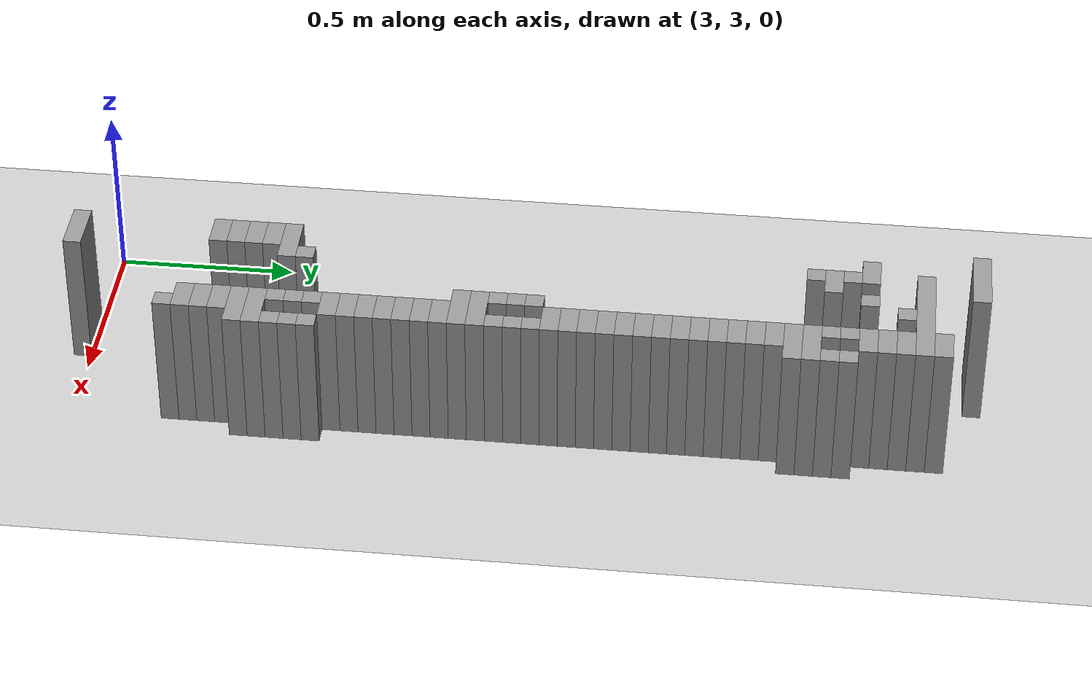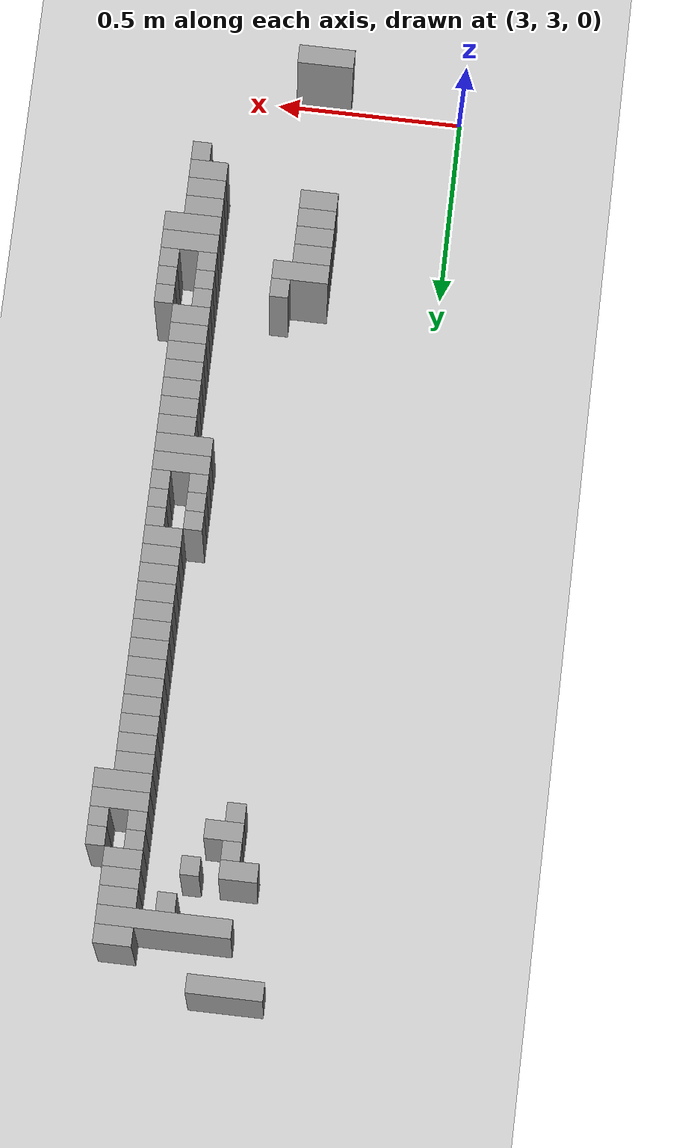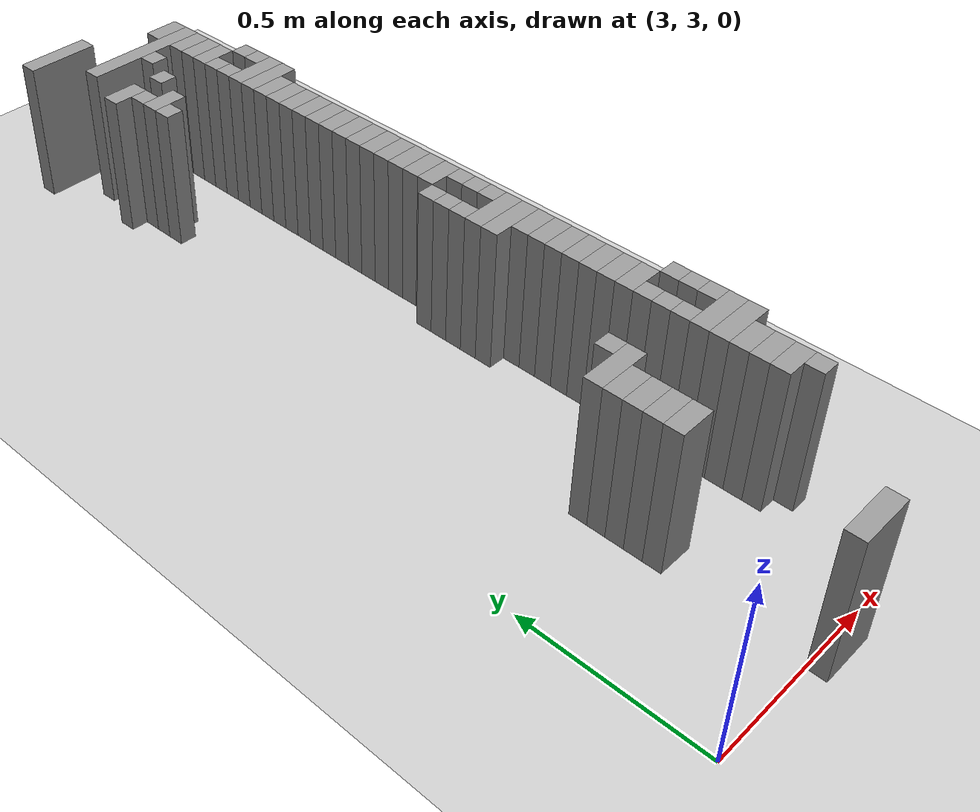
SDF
<sdf version="1.6">
 <world name="parking_mission">
  <include><uri>model://sun</uri></include>
  <include><uri>model://ground_plane</uri></include>
  <model name="wall_8">
   <static>true</static>
   <pose>3.3500 5.4750 0.2000 0 0 0</pose>
   <link name="link">
    <collision name="collision">
     <geometry><box><size>0.2000 0.0500 0.4000</size></box></geometry>
     <surface>
      <contact><ode><kp>20000.0</kp><kd>10.0</kd><max_vel>0.5</max_vel><min_depth>0.001</min_depth></ode></contact>
      <friction><ode><mu>1.0</mu><mu2>1.0</mu2></ode></friction>
     </surface>
    </collision>
    <visual name="visual">
     <geometry><box><size>0.2000 0.0500 0.4000</size></box></geometry>
     <material>
      <script><name>Gazebo/Grey</name><uri>file://media/materials/scripts/gazebo.material</uri></script>
     </material>
    </visual>
   </link>
  </model>
  <model name="wall_13">
   <static>true</static>
   <pose>3.6500 5.3750 0.2000 0 0 0</pose>
   <link name="link">
    <collision name="collision">
     <geometry><box><size>0.1000 0.0500 0.4000</size></box></geometry>
     <surface>
      <contact><ode><kp>20000.0</kp><kd>10.0</kd><max_vel>0.5</max_vel><min_depth>0.001</min_depth></ode></contact>
      <friction><ode><mu>1.0</mu><mu2>1.0</mu2></ode></friction>
     </surface>
    </collision>
    <visual name="visual">
     <geometry><box><size>0.1000 0.0500 0.4000</size></box></geometry>
     <material>
      <script><name>Gazebo/Grey</name><uri>file://media/materials/scripts/gazebo.material</uri></script>
     </material>
    </visual>
   </link>
  </model>
  <model name="wall_16">
   <static>true</static>
   <pose>3.5250 5.3250 0.2000 0 0 0</pose>
   <link name="link">
    <collision name="collision">
     <geometry><box><size>0.3500 0.0500 0.4000</size></box></geometry>
     <surface>
      <contact><ode><kp>20000.0</kp><kd>10.0</kd><max_vel>0.5</max_vel><min_depth>0.001</min_depth></ode></contact>
      <friction><ode><mu>1.0</mu><mu2>1.0</mu2></ode></friction>
     </surface>
    </collision>
    <visual name="visual">
     <geometry><box><size>0.3500 0.0500 0.4000</size></box></geometry>
     <material>
      <script><name>Gazebo/Grey</name><uri>file://media/materials/scripts/gazebo.material</uri></script>
     </material>
    </visual>
   </link>
  </model>
  <model name="wall_19">
   <static>true</static>
   <pose>3.5250 5.2750 0.2000 0 0 0</pose>
   <link name="link">
    <collision name="collision">
     <geometry><box><size>0.0500 0.0500 0.4000</size></box></geometry>
     <surface>
      <contact><ode><kp>20000.0</kp><kd>10.0</kd><max_vel>0.5</max_vel><min_depth>0.001</min_depth></ode></contact>
      <friction><ode><mu>1.0</mu><mu2>1.0</mu2></ode></friction>
     </surface>
    </collision>
    <visual name="visual">
     <geometry><box><size>0.0500 0.0500 0.4000</size></box></geometry>
     <material>
      <script><name>Gazebo/Grey</name><uri>file://media/materials/scripts/gazebo.material</uri></script>
     </material>
    </visual>
   </link>
  </model>
  <model name="wall_20">
   <static>true</static>
   <pose>3.6500 5.2750 0.2000 0 0 0</pose>
   <link name="link">
    <collision name="collision">
     <geometry><box><size>0.1000 0.0500 0.4000</size></box></geometry>
     <surface>
      <contact><ode><kp>20000.0</kp><kd>10.0</kd><max_vel>0.5</max_vel><min_depth>0.001</min_depth></ode></contact>
      <friction><ode><mu>1.0</mu><mu2>1.0</mu2></ode></friction>
     </surface>
    </collision>
    <visual name="visual">
     <geometry><box><size>0.1000 0.0500 0.4000</size></box></geometry>
     <material>
      <script><name>Gazebo/Grey</name><uri>file://media/materials/scripts/gazebo.material</uri></script>
     </material>
    </visual>
   </link>
  </model>
  <model name="wall_22">
   <static>true</static>
   <pose>3.6500 5.2250 0.2000 0 0 0</pose>
   <link name="link">
    <collision name="collision">
     <geometry><box><size>0.1000 0.0500 0.4000</size></box></geometry>
     <surface>
      <contact><ode><kp>20000.0</kp><kd>10.0</kd><max_vel>0.5</max_vel><min_depth>0.001</min_depth></ode></contact>
      <friction><ode><mu>1.0</mu><mu2>1.0</mu2></ode></friction>
     </surface>
    </collision>
    <visual name="visual">
     <geometry><box><size>0.1000 0.0500 0.4000</size></box></geometry>
     <material>
      <script><name>Gazebo/Grey</name><uri>file://media/materials/scripts/gazebo.material</uri></script>
     </material>
    </visual>
   </link>
  </model>
  <model name="wall_24">
   <static>true</static>
   <pose>3.3500 5.1750 0.2000 0 0 0</pose>
   <link name="link">
    <collision name="collision">
     <geometry><box><size>0.1000 0.0500 0.4000</size></box></geometry>
     <surface>
      <contact><ode><kp>20000.0</kp><kd>10.0</kd><max_vel>0.5</max_vel><min_depth>0.001</min_depth></ode></contact>
      <friction><ode><mu>1.0</mu><mu2>1.0</mu2></ode></friction>
     </surface>
    </collision>
    <visual name="visual">
     <geometry><box><size>0.1000 0.0500 0.4000</size></box></geometry>
     <material>
      <script><name>Gazebo/Grey</name><uri>file://media/materials/scripts/gazebo.material</uri></script>
     </material>
    </visual>
   </link>
  </model>
  <model name="wall_25">
   <static>true</static>
   <pose>3.4750 5.1750 0.2000 0 0 0</pose>
   <link name="link">
    <collision name="collision">
     <geometry><box><size>0.0500 0.0500 0.4000</size></box></geometry>
     <surface>
      <contact><ode><kp>20000.0</kp><kd>10.0</kd><max_vel>0.5</max_vel><min_depth>0.001</min_depth></ode></contact>
      <friction><ode><mu>1.0</mu><mu2>1.0</mu2></ode></friction>
     </surface>
    </collision>
    <visual name="visual">
     <geometry><box><size>0.0500 0.0500 0.4000</size></box></geometry>
     <material>
      <script><name>Gazebo/Grey</name><uri>file://media/materials/scripts/gazebo.material</uri></script>
     </material>
    </visual>
   </link>
  </model>
  <model name="wall_26">
   <static>true</static>
   <pose>3.6500 5.1750 0.2000 0 0 0</pose>
   <link name="link">
    <collision name="collision">
     <geometry><box><size>0.1000 0.0500 0.4000</size></box></geometry>
     <surface>
      <contact><ode><kp>20000.0</kp><kd>10.0</kd><max_vel>0.5</max_vel><min_depth>0.001</min_depth></ode></contact>
      <friction><ode><mu>1.0</mu><mu2>1.0</mu2></ode></friction>
     </surface>
    </collision>
    <visual name="visual">
     <geometry><box><size>0.1000 0.0500 0.4000</size></box></geometry>
     <material>
      <script><name>Gazebo/Grey</name><uri>file://media/materials/scripts/gazebo.material</uri></script>
     </material>
    </visual>
   </link>
  </model>
  <model name="wall_29">
   <static>true</static>
   <pose>3.3750 5.1250 0.2000 0 0 0</pose>
   <link name="link">
    <collision name="collision">
     <geometry><box><size>0.0500 0.0500 0.4000</size></box></geometry>
     <surface>
      <contact><ode><kp>20000.0</kp><kd>10.0</kd><max_vel>0.5</max_vel><min_depth>0.001</min_depth></ode></contact>
      <friction><ode><mu>1.0</mu><mu2>1.0</mu2></ode></friction>
     </surface>
    </collision>
    <visual name="visual">
     <geometry><box><size>0.0500 0.0500 0.4000</size></box></geometry>
     <material>
      <script><name>Gazebo/Grey</name><uri>file://media/materials/scripts/gazebo.material</uri></script>
     </material>
    </visual>
   </link>
  </model>
  <model name="wall_30">
   <static>true</static>
   <pose>3.6250 5.1250 0.2000 0 0 0</pose>
   <link name="link">
    <collision name="collision">
     <geometry><box><size>0.0500 0.0500 0.4000</size></box></geometry>
     <surface>
      <contact><ode><kp>20000.0</kp><kd>10.0</kd><max_vel>0.5</max_vel><min_depth>0.001</min_depth></ode></contact>
      <friction><ode><mu>1.0</mu><mu2>1.0</mu2></ode></friction>
     </surface>
    </collision>
    <visual name="visual">
     <geometry><box><size>0.0500 0.0500 0.4000</size></box></geometry>
     <material>
      <script><name>Gazebo/Grey</name><uri>file://media/materials/scripts/gazebo.material</uri></script>
     </material>
    </visual>
   </link>
  </model>
  <model name="wall_31">
   <static>true</static>
   <pose>3.7250 5.1250 0.2000 0 0 0</pose>
   <link name="link">
    <collision name="collision">
     <geometry><box><size>0.0500 0.0500 0.4000</size></box></geometry>
     <surface>
      <contact><ode><kp>20000.0</kp><kd>10.0</kd><max_vel>0.5</max_vel><min_depth>0.001</min_depth></ode></contact>
      <friction><ode><mu>1.0</mu><mu2>1.0</mu2></ode></friction>
     </surface>
    </collision>
    <visual name="visual">
     <geometry><box><size>0.0500 0.0500 0.4000</size></box></geometry>
     <material>
      <script><name>Gazebo/Grey</name><uri>file://media/materials/scripts/gazebo.material</uri></script>
     </material>
    </visual>
   </link>
  </model>
  <model name="wall_33">
   <static>true</static>
   <pose>3.4000 5.0750 0.2000 0 0 0</pose>
   <link name="link">
    <collision name="collision">
     <geometry><box><size>0.1000 0.0500 0.4000</size></box></geometry>
     <surface>
      <contact><ode><kp>20000.0</kp><kd>10.0</kd><max_vel>0.5</max_vel><min_depth>0.001</min_depth></ode></contact>
      <friction><ode><mu>1.0</mu><mu2>1.0</mu2></ode></friction>
     </surface>
    </collision>
    <visual name="visual">
     <geometry><box><size>0.1000 0.0500 0.4000</size></box></geometry>
     <material>
      <script><name>Gazebo/Grey</name><uri>file://media/materials/scripts/gazebo.material</uri></script>
     </material>
    </visual>
   </link>
  </model>
  <model name="wall_34">
   <static>true</static>
   <pose>3.6250 5.0750 0.2000 0 0 0</pose>
   <link name="link">
    <collision name="collision">
     <geometry><box><size>0.0500 0.0500 0.4000</size></box></geometry>
     <surface>
      <contact><ode><kp>20000.0</kp><kd>10.0</kd><max_vel>0.5</max_vel><min_depth>0.001</min_depth></ode></contact>
      <friction><ode><mu>1.0</mu><mu2>1.0</mu2></ode></friction>
     </surface>
    </collision>
    <visual name="visual">
     <geometry><box><size>0.0500 0.0500 0.4000</size></box></geometry>
     <material>
      <script><name>Gazebo/Grey</name><uri>file://media/materials/scripts/gazebo.material</uri></script>
     </material>
    </visual>
   </link>
  </model>
  <model name="wall_35">
   <static>true</static>
   <pose>3.7250 5.0750 0.2000 0 0 0</pose>
   <link name="link">
    <collision name="collision">
     <geometry><box><size>0.0500 0.0500 0.4000</size></box></geometry>
     <surface>
      <contact><ode><kp>20000.0</kp><kd>10.0</kd><max_vel>0.5</max_vel><min_depth>0.001</min_depth></ode></contact>
      <friction><ode><mu>1.0</mu><mu2>1.0</mu2></ode></friction>
     </surface>
    </collision>
    <visual name="visual">
     <geometry><box><size>0.0500 0.0500 0.4000</size></box></geometry>
     <material>
      <script><name>Gazebo/Grey</name><uri>file://media/materials/scripts/gazebo.material</uri></script>
     </material>
    </visual>
   </link>
  </model>
  <model name="wall_37">
   <static>true</static>
   <pose>3.3750 5.0250 0.2000 0 0 0</pose>
   <link name="link">
    <collision name="collision">
     <geometry><box><size>0.0500 0.0500 0.4000</size></box></geometry>
     <surface>
      <contact><ode><kp>20000.0</kp><kd>10.0</kd><max_vel>0.5</max_vel><min_depth>0.001</min_depth></ode></contact>
      <friction><ode><mu>1.0</mu><mu2>1.0</mu2></ode></friction>
     </surface>
    </collision>
    <visual name="visual">
     <geometry><box><size>0.0500 0.0500 0.4000</size></box></geometry>
     <material>
      <script><name>Gazebo/Grey</name><uri>file://media/materials/scripts/gazebo.material</uri></script>
     </material>
    </visual>
   </link>
  </model>
  <model name="wall_38">
   <static>true</static>
   <pose>3.6750 5.0250 0.2000 0 0 0</pose>
   <link name="link">
    <collision name="collision">
     <geometry><box><size>0.1500 0.0500 0.4000</size></box></geometry>
     <surface>
      <contact><ode><kp>20000.0</kp><kd>10.0</kd><max_vel>0.5</max_vel><min_depth>0.001</min_depth></ode></contact>
      <friction><ode><mu>1.0</mu><mu2>1.0</mu2></ode></friction>
     </surface>
    </collision>
    <visual name="visual">
     <geometry><box><size>0.1500 0.0500 0.4000</size></box></geometry>
     <material>
      <script><name>Gazebo/Grey</name><uri>file://media/materials/scripts/gazebo.material</uri></script>
     </material>
    </visual>
   </link>
  </model>
  <model name="wall_40">
   <static>true</static>
   <pose>3.6750 4.9750 0.2000 0 0 0</pose>
   <link name="link">
    <collision name="collision">
     <geometry><box><size>0.1500 0.0500 0.4000</size></box></geometry>
     <surface>
      <contact><ode><kp>20000.0</kp><kd>10.0</kd><max_vel>0.5</max_vel><min_depth>0.001</min_depth></ode></contact>
      <friction><ode><mu>1.0</mu><mu2>1.0</mu2></ode></friction>
     </surface>
    </collision>
    <visual name="visual">
     <geometry><box><size>0.1500 0.0500 0.4000</size></box></geometry>
     <material>
      <script><name>Gazebo/Grey</name><uri>file://media/materials/scripts/gazebo.material</uri></script>
     </material>
    </visual>
   </link>
  </model>
  <model name="wall_42">
   <static>true</static>
   <pose>3.6500 4.9250 0.2000 0 0 0</pose>
   <link name="link">
    <collision name="collision">
     <geometry><box><size>0.1000 0.0500 0.4000</size></box></geometry>
     <surface>
      <contact><ode><kp>20000.0</kp><kd>10.0</kd><max_vel>0.5</max_vel><min_depth>0.001</min_depth></ode></contact>
      <friction><ode><mu>1.0</mu><mu2>1.0</mu2></ode></friction>
     </surface>
    </collision>
    <visual name="visual">
     <geometry><box><size>0.1000 0.0500 0.4000</size></box></geometry>
     <material>
      <script><name>Gazebo/Grey</name><uri>file://media/materials/scripts/gazebo.material</uri></script>
     </material>
    </visual>
   </link>
  </model>
  <model name="wall_44">
   <static>true</static>
   <pose>3.6500 4.8750 0.2000 0 0 0</pose>
   <link name="link">
    <collision name="collision">
     <geometry><box><size>0.1000 0.0500 0.4000</size></box></geometry>
     <surface>
      <contact><ode><kp>20000.0</kp><kd>10.0</kd><max_vel>0.5</max_vel><min_depth>0.001</min_depth></ode></contact>
      <friction><ode><mu>1.0</mu><mu2>1.0</mu2></ode></friction>
     </surface>
    </collision>
    <visual name="visual">
     <geometry><box><size>0.1000 0.0500 0.4000</size></box></geometry>
     <material>
      <script><name>Gazebo/Grey</name><uri>file://media/materials/scripts/gazebo.material</uri></script>
     </material>
    </visual>
   </link>
  </model>
  <model name="wall_46">
   <static>true</static>
   <pose>3.6500 4.8250 0.2000 0 0 0</pose>
   <link name="link">
    <collision name="collision">
     <geometry><box><size>0.1000 0.0500 0.4000</size></box></geometry>
     <surface>
      <contact><ode><kp>20000.0</kp><kd>10.0</kd><max_vel>0.5</max_vel><min_depth>0.001</min_depth></ode></contact>
      <friction><ode><mu>1.0</mu><mu2>1.0</mu2></ode></friction>
     </surface>
    </collision>
    <visual name="visual">
     <geometry><box><size>0.1000 0.0500 0.4000</size></box></geometry>
     <material>
      <script><name>Gazebo/Grey</name><uri>file://media/materials/scripts/gazebo.material</uri></script>
     </material>
    </visual>
   </link>
  </model>
  <model name="wall_48">
   <static>true</static>
   <pose>3.6500 4.7750 0.2000 0 0 0</pose>
   <link name="link">
    <collision name="collision">
     <geometry><box><size>0.1000 0.0500 0.4000</size></box></geometry>
     <surface>
      <contact><ode><kp>20000.0</kp><kd>10.0</kd><max_vel>0.5</max_vel><min_depth>0.001</min_depth></ode></contact>
      <friction><ode><mu>1.0</mu><mu2>1.0</mu2></ode></friction>
     </surface>
    </collision>
    <visual name="visual">
     <geometry><box><size>0.1000 0.0500 0.4000</size></box></geometry>
     <material>
      <script><name>Gazebo/Grey</name><uri>file://media/materials/scripts/gazebo.material</uri></script>
     </material>
    </visual>
   </link>
  </model>
  <model name="wall_51">
   <static>true</static>
   <pose>3.6500 4.7250 0.2000 0 0 0</pose>
   <link name="link">
    <collision name="collision">
     <geometry><box><size>0.1000 0.0500 0.4000</size></box></geometry>
     <surface>
      <contact><ode><kp>20000.0</kp><kd>10.0</kd><max_vel>0.5</max_vel><min_depth>0.001</min_depth></ode></contact>
      <friction><ode><mu>1.0</mu><mu2>1.0</mu2></ode></friction>
     </surface>
    </collision>
    <visual name="visual">
     <geometry><box><size>0.1000 0.0500 0.4000</size></box></geometry>
     <material>
      <script><name>Gazebo/Grey</name><uri>file://media/materials/scripts/gazebo.material</uri></script>
     </material>
    </visual>
   </link>
  </model>
  <model name="wall_53">
   <static>true</static>
   <pose>3.6500 4.6750 0.2000 0 0 0</pose>
   <link name="link">
    <collision name="collision">
     <geometry><box><size>0.1000 0.0500 0.4000</size></box></geometry>
     <surface>
      <contact><ode><kp>20000.0</kp><kd>10.0</kd><max_vel>0.5</max_vel><min_depth>0.001</min_depth></ode></contact>
      <friction><ode><mu>1.0</mu><mu2>1.0</mu2></ode></friction>
     </surface>
    </collision>
    <visual name="visual">
     <geometry><box><size>0.1000 0.0500 0.4000</size></box></geometry>
     <material>
      <script><name>Gazebo/Grey</name><uri>file://media/materials/scripts/gazebo.material</uri></script>
     </material>
    </visual>
   </link>
  </model>
  <model name="wall_55">
   <static>true</static>
   <pose>3.6500 4.6250 0.2000 0 0 0</pose>
   <link name="link">
    <collision name="collision">
     <geometry><box><size>0.1000 0.0500 0.4000</size></box></geometry>
     <surface>
      <contact><ode><kp>20000.0</kp><kd>10.0</kd><max_vel>0.5</max_vel><min_depth>0.001</min_depth></ode></contact>
      <friction><ode><mu>1.0</mu><mu2>1.0</mu2></ode></friction>
     </surface>
    </collision>
    <visual name="visual">
     <geometry><box><size>0.1000 0.0500 0.4000</size></box></geometry>
     <material>
      <script><name>Gazebo/Grey</name><uri>file://media/materials/scripts/gazebo.material</uri></script>
     </material>
    </visual>
   </link>
  </model>
  <model name="wall_57">
   <static>true</static>
   <pose>3.6500 4.5750 0.2000 0 0 0</pose>
   <link name="link">
    <collision name="collision">
     <geometry><box><size>0.1000 0.0500 0.4000</size></box></geometry>
     <surface>
      <contact><ode><kp>20000.0</kp><kd>10.0</kd><max_vel>0.5</max_vel><min_depth>0.001</min_depth></ode></contact>
      <friction><ode><mu>1.0</mu><mu2>1.0</mu2></ode></friction>
     </surface>
    </collision>
    <visual name="visual">
     <geometry><box><size>0.1000 0.0500 0.4000</size></box></geometry>
     <material>
      <script><name>Gazebo/Grey</name><uri>file://media/materials/scripts/gazebo.material</uri></script>
     </material>
    </visual>
   </link>
  </model>
  <model name="wall_59">
   <static>true</static>
   <pose>3.6500 4.5250 0.2000 0 0 0</pose>
   <link name="link">
    <collision name="collision">
     <geometry><box><size>0.1000 0.0500 0.4000</size></box></geometry>
     <surface>
      <contact><ode><kp>20000.0</kp><kd>10.0</kd><max_vel>0.5</max_vel><min_depth>0.001</min_depth></ode></contact>
      <friction><ode><mu>1.0</mu><mu2>1.0</mu2></ode></friction>
     </surface>
    </collision>
    <visual name="visual">
     <geometry><box><size>0.1000 0.0500 0.4000</size></box></geometry>
     <material>
      <script><name>Gazebo/Grey</name><uri>file://media/materials/scripts/gazebo.material</uri></script>
     </material>
    </visual>
   </link>
  </model>
  <model name="wall_61">
   <static>true</static>
   <pose>3.6500 4.4750 0.2000 0 0 0</pose>
   <link name="link">
    <collision name="collision">
     <geometry><box><size>0.1000 0.0500 0.4000</size></box></geometry>
     <surface>
      <contact><ode><kp>20000.0</kp><kd>10.0</kd><max_vel>0.5</max_vel><min_depth>0.001</min_depth></ode></contact>
      <friction><ode><mu>1.0</mu><mu2>1.0</mu2></ode></friction>
     </surface>
    </collision>
    <visual name="visual">
     <geometry><box><size>0.1000 0.0500 0.4000</size></box></geometry>
     <material>
      <script><name>Gazebo/Grey</name><uri>file://media/materials/scripts/gazebo.material</uri></script>
     </material>
    </visual>
   </link>
  </model>
  <model name="wall_63">
   <static>true</static>
   <pose>3.6500 4.4250 0.2000 0 0 0</pose>
   <link name="link">
    <collision name="collision">
     <geometry><box><size>0.1000 0.0500 0.4000</size></box></geometry>
     <surface>
      <contact><ode><kp>20000.0</kp><kd>10.0</kd><max_vel>0.5</max_vel><min_depth>0.001</min_depth></ode></contact>
      <friction><ode><mu>1.0</mu><mu2>1.0</mu2></ode></friction>
     </surface>
    </collision>
    <visual name="visual">
     <geometry><box><size>0.1000 0.0500 0.4000</size></box></geometry>
     <material>
      <script><name>Gazebo/Grey</name><uri>file://media/materials/scripts/gazebo.material</uri></script>
     </material>
    </visual>
   </link>
  </model>
  <model name="wall_65">
   <static>true</static>
   <pose>3.6500 4.3750 0.2000 0 0 0</pose>
   <link name="link">
    <collision name="collision">
     <geometry><box><size>0.1000 0.0500 0.4000</size></box></geometry>
     <surface>
      <contact><ode><kp>20000.0</kp><kd>10.0</kd><max_vel>0.5</max_vel><min_depth>0.001</min_depth></ode></contact>
      <friction><ode><mu>1.0</mu><mu2>1.0</mu2></ode></friction>
     </surface>
    </collision>
    <visual name="visual">
     <geometry><box><size>0.1000 0.0500 0.4000</size></box></geometry>
     <material>
      <script><name>Gazebo/Grey</name><uri>file://media/materials/scripts/gazebo.material</uri></script>
     </material>
    </visual>
   </link>
  </model>
  <model name="wall_68">
   <static>true</static>
   <pose>3.6500 4.3250 0.2000 0 0 0</pose>
   <link name="link">
    <collision name="collision">
     <geometry><box><size>0.1000 0.0500 0.4000</size></box></geometry>
     <surface>
      <contact><ode><kp>20000.0</kp><kd>10.0</kd><max_vel>0.5</max_vel><min_depth>0.001</min_depth></ode></contact>
      <friction><ode><mu>1.0</mu><mu2>1.0</mu2></ode></friction>
     </surface>
    </collision>
    <visual name="visual">
     <geometry><box><size>0.1000 0.0500 0.4000</size></box></geometry>
     <material>
      <script><name>Gazebo/Grey</name><uri>file://media/materials/scripts/gazebo.material</uri></script>
     </material>
    </visual>
   </link>
  </model>
  <model name="wall_72">
   <static>true</static>
   <pose>3.5750 4.2750 0.2000 0 0 0</pose>
   <link name="link">
    <collision name="collision">
     <geometry><box><size>0.0500 0.0500 0.4000</size></box></geometry>
     <surface>
      <contact><ode><kp>20000.0</kp><kd>10.0</kd><max_vel>0.5</max_vel><min_depth>0.001</min_depth></ode></contact>
      <friction><ode><mu>1.0</mu><mu2>1.0</mu2></ode></friction>
     </surface>
    </collision>
    <visual name="visual">
     <geometry><box><size>0.0500 0.0500 0.4000</size></box></geometry>
     <material>
      <script><name>Gazebo/Grey</name><uri>file://media/materials/scripts/gazebo.material</uri></script>
     </material>
    </visual>
   </link>
  </model>
  <model name="wall_73">
   <static>true</static>
   <pose>3.6750 4.2750 0.2000 0 0 0</pose>
   <link name="link">
    <collision name="collision">
     <geometry><box><size>0.0500 0.0500 0.4000</size></box></geometry>
     <surface>
      <contact><ode><kp>20000.0</kp><kd>10.0</kd><max_vel>0.5</max_vel><min_depth>0.001</min_depth></ode></contact>
      <friction><ode><mu>1.0</mu><mu2>1.0</mu2></ode></friction>
     </surface>
    </collision>
    <visual name="visual">
     <geometry><box><size>0.0500 0.0500 0.4000</size></box></geometry>
     <material>
      <script><name>Gazebo/Grey</name><uri>file://media/materials/scripts/gazebo.material</uri></script>
     </material>
    </visual>
   </link>
  </model>
  <model name="wall_78">
   <static>true</static>
   <pose>3.5750 4.2250 0.2000 0 0 0</pose>
   <link name="link">
    <collision name="collision">
     <geometry><box><size>0.0500 0.0500 0.4000</size></box></geometry>
     <surface>
      <contact><ode><kp>20000.0</kp><kd>10.0</kd><max_vel>0.5</max_vel><min_depth>0.001</min_depth></ode></contact>
      <friction><ode><mu>1.0</mu><mu2>1.0</mu2></ode></friction>
     </surface>
    </collision>
    <visual name="visual">
     <geometry><box><size>0.0500 0.0500 0.4000</size></box></geometry>
     <material>
      <script><name>Gazebo/Grey</name><uri>file://media/materials/scripts/gazebo.material</uri></script>
     </material>
    </visual>
   </link>
  </model>
  <model name="wall_79">
   <static>true</static>
   <pose>3.6750 4.2250 0.2000 0 0 0</pose>
   <link name="link">
    <collision name="collision">
     <geometry><box><size>0.0500 0.0500 0.4000</size></box></geometry>
     <surface>
      <contact><ode><kp>20000.0</kp><kd>10.0</kd><max_vel>0.5</max_vel><min_depth>0.001</min_depth></ode></contact>
      <friction><ode><mu>1.0</mu><mu2>1.0</mu2></ode></friction>
     </surface>
    </collision>
    <visual name="visual">
     <geometry><box><size>0.0500 0.0500 0.4000</size></box></geometry>
     <material>
      <script><name>Gazebo/Grey</name><uri>file://media/materials/scripts/gazebo.material</uri></script>
     </material>
    </visual>
   </link>
  </model>
  <model name="wall_83">
   <static>true</static>
   <pose>3.5750 4.1750 0.2000 0 0 0</pose>
   <link name="link">
    <collision name="collision">
     <geometry><box><size>0.0500 0.0500 0.4000</size></box></geometry>
     <surface>
      <contact><ode><kp>20000.0</kp><kd>10.0</kd><max_vel>0.5</max_vel><min_depth>0.001</min_depth></ode></contact>
      <friction><ode><mu>1.0</mu><mu2>1.0</mu2></ode></friction>
     </surface>
    </collision>
    <visual name="visual">
     <geometry><box><size>0.0500 0.0500 0.4000</size></box></geometry>
     <material>
      <script><name>Gazebo/Grey</name><uri>file://media/materials/scripts/gazebo.material</uri></script>
     </material>
    </visual>
   </link>
  </model>
  <model name="wall_84">
   <static>true</static>
   <pose>3.6750 4.1750 0.2000 0 0 0</pose>
   <link name="link">
    <collision name="collision">
     <geometry><box><size>0.0500 0.0500 0.4000</size></box></geometry>
     <surface>
      <contact><ode><kp>20000.0</kp><kd>10.0</kd><max_vel>0.5</max_vel><min_depth>0.001</min_depth></ode></contact>
      <friction><ode><mu>1.0</mu><mu2>1.0</mu2></ode></friction>
     </surface>
    </collision>
    <visual name="visual">
     <geometry><box><size>0.0500 0.0500 0.4000</size></box></geometry>
     <material>
      <script><name>Gazebo/Grey</name><uri>file://media/materials/scripts/gazebo.material</uri></script>
     </material>
    </visual>
   </link>
  </model>
  <model name="wall_89">
   <static>true</static>
   <pose>3.6250 4.1250 0.2000 0 0 0</pose>
   <link name="link">
    <collision name="collision">
     <geometry><box><size>0.1500 0.0500 0.4000</size></box></geometry>
     <surface>
      <contact><ode><kp>20000.0</kp><kd>10.0</kd><max_vel>0.5</max_vel><min_depth>0.001</min_depth></ode></contact>
      <friction><ode><mu>1.0</mu><mu2>1.0</mu2></ode></friction>
     </surface>
    </collision>
    <visual name="visual">
     <geometry><box><size>0.1500 0.0500 0.4000</size></box></geometry>
     <material>
      <script><name>Gazebo/Grey</name><uri>file://media/materials/scripts/gazebo.material</uri></script>
     </material>
    </visual>
   </link>
  </model>
  <model name="wall_92">
   <static>true</static>
   <pose>3.6250 4.0750 0.2000 0 0 0</pose>
   <link name="link">
    <collision name="collision">
     <geometry><box><size>0.1500 0.0500 0.4000</size></box></geometry>
     <surface>
      <contact><ode><kp>20000.0</kp><kd>10.0</kd><max_vel>0.5</max_vel><min_depth>0.001</min_depth></ode></contact>
      <friction><ode><mu>1.0</mu><mu2>1.0</mu2></ode></friction>
     </surface>
    </collision>
    <visual name="visual">
     <geometry><box><size>0.1500 0.0500 0.4000</size></box></geometry>
     <material>
      <script><name>Gazebo/Grey</name><uri>file://media/materials/scripts/gazebo.material</uri></script>
     </material>
    </visual>
   </link>
  </model>
  <model name="wall_96">
   <static>true</static>
   <pose>3.6500 4.0250 0.2000 0 0 0</pose>
   <link name="link">
    <collision name="collision">
     <geometry><box><size>0.1000 0.0500 0.4000</size></box></geometry>
     <surface>
      <contact><ode><kp>20000.0</kp><kd>10.0</kd><max_vel>0.5</max_vel><min_depth>0.001</min_depth></ode></contact>
      <friction><ode><mu>1.0</mu><mu2>1.0</mu2></ode></friction>
     </surface>
    </collision>
    <visual name="visual">
     <geometry><box><size>0.1000 0.0500 0.4000</size></box></geometry>
     <material>
      <script><name>Gazebo/Grey</name><uri>file://media/materials/scripts/gazebo.material</uri></script>
     </material>
    </visual>
   </link>
  </model>
  <model name="wall_99">
   <static>true</static>
   <pose>3.6500 3.9750 0.2000 0 0 0</pose>
   <link name="link">
    <collision name="collision">
     <geometry><box><size>0.1000 0.0500 0.4000</size></box></geometry>
     <surface>
      <contact><ode><kp>20000.0</kp><kd>10.0</kd><max_vel>0.5</max_vel><min_depth>0.001</min_depth></ode></contact>
      <friction><ode><mu>1.0</mu><mu2>1.0</mu2></ode></friction>
     </surface>
    </collision>
    <visual name="visual">
     <geometry><box><size>0.1000 0.0500 0.4000</size></box></geometry>
     <material>
      <script><name>Gazebo/Grey</name><uri>file://media/materials/scripts/gazebo.material</uri></script>
     </material>
    </visual>
   </link>
  </model>
  <model name="wall_102">
   <static>true</static>
   <pose>3.6500 3.9250 0.2000 0 0 0</pose>
   <link name="link">
    <collision name="collision">
     <geometry><box><size>0.1000 0.0500 0.4000</size></box></geometry>
     <surface>
      <contact><ode><kp>20000.0</kp><kd>10.0</kd><max_vel>0.5</max_vel><min_depth>0.001</min_depth></ode></contact>
      <friction><ode><mu>1.0</mu><mu2>1.0</mu2></ode></friction>
     </surface>
    </collision>
    <visual name="visual">
     <geometry><box><size>0.1000 0.0500 0.4000</size></box></geometry>
     <material>
      <script><name>Gazebo/Grey</name><uri>file://media/materials/scripts/gazebo.material</uri></script>
     </material>
    </visual>
   </link>
  </model>
  <model name="wall_105">
   <static>true</static>
   <pose>3.6500 3.8750 0.2000 0 0 0</pose>
   <link name="link">
    <collision name="collision">
     <geometry><box><size>0.1000 0.0500 0.4000</size></box></geometry>
     <surface>
      <contact><ode><kp>20000.0</kp><kd>10.0</kd><max_vel>0.5</max_vel><min_depth>0.001</min_depth></ode></contact>
      <friction><ode><mu>1.0</mu><mu2>1.0</mu2></ode></friction>
     </surface>
    </collision>
    <visual name="visual">
     <geometry><box><size>0.1000 0.0500 0.4000</size></box></geometry>
     <material>
      <script><name>Gazebo/Grey</name><uri>file://media/materials/scripts/gazebo.material</uri></script>
     </material>
    </visual>
   </link>
  </model>
  <model name="wall_108">
   <static>true</static>
   <pose>3.6500 3.8250 0.2000 0 0 0</pose>
   <link name="link">
    <collision name="collision">
     <geometry><box><size>0.1000 0.0500 0.4000</size></box></geometry>
     <surface>
      <contact><ode><kp>20000.0</kp><kd>10.0</kd><max_vel>0.5</max_vel><min_depth>0.001</min_depth></ode></contact>
      <friction><ode><mu>1.0</mu><mu2>1.0</mu2></ode></friction>
     </surface>
    </collision>
    <visual name="visual">
     <geometry><box><size>0.1000 0.0500 0.4000</size></box></geometry>
     <material>
      <script><name>Gazebo/Grey</name><uri>file://media/materials/scripts/gazebo.material</uri></script>
     </material>
    </visual>
   </link>
  </model>
  <model name="wall_112">
   <static>true</static>
   <pose>3.6500 3.7750 0.2000 0 0 0</pose>
   <link name="link">
    <collision name="collision">
     <geometry><box><size>0.1000 0.0500 0.4000</size></box></geometry>
     <surface>
      <contact><ode><kp>20000.0</kp><kd>10.0</kd><max_vel>0.5</max_vel><min_depth>0.001</min_depth></ode></contact>
      <friction><ode><mu>1.0</mu><mu2>1.0</mu2></ode></friction>
     </surface>
    </collision>
    <visual name="visual">
     <geometry><box><size>0.1000 0.0500 0.4000</size></box></geometry>
     <material>
      <script><name>Gazebo/Grey</name><uri>file://media/materials/scripts/gazebo.material</uri></script>
     </material>
    </visual>
   </link>
  </model>
  <model name="wall_118">
   <static>true</static>
   <pose>3.6500 3.7250 0.2000 0 0 0</pose>
   <link name="link">
    <collision name="collision">
     <geometry><box><size>0.1000 0.0500 0.4000</size></box></geometry>
     <surface>
      <contact><ode><kp>20000.0</kp><kd>10.0</kd><max_vel>0.5</max_vel><min_depth>0.001</min_depth></ode></contact>
      <friction><ode><mu>1.0</mu><mu2>1.0</mu2></ode></friction>
     </surface>
    </collision>
    <visual name="visual">
     <geometry><box><size>0.1000 0.0500 0.4000</size></box></geometry>
     <material>
      <script><name>Gazebo/Grey</name><uri>file://media/materials/scripts/gazebo.material</uri></script>
     </material>
    </visual>
   </link>
  </model>
  <model name="wall_123">
   <static>true</static>
   <pose>3.6250 3.6750 0.2000 0 0 0</pose>
   <link name="link">
    <collision name="collision">
     <geometry><box><size>0.0500 0.0500 0.4000</size></box></geometry>
     <surface>
      <contact><ode><kp>20000.0</kp><kd>10.0</kd><max_vel>0.5</max_vel><min_depth>0.001</min_depth></ode></contact>
      <friction><ode><mu>1.0</mu><mu2>1.0</mu2></ode></friction>
     </surface>
    </collision>
    <visual name="visual">
     <geometry><box><size>0.0500 0.0500 0.4000</size></box></geometry>
     <material>
      <script><name>Gazebo/Grey</name><uri>file://media/materials/scripts/gazebo.material</uri></script>
     </material>
    </visual>
   </link>
  </model>
  <model name="wall_124">
   <static>true</static>
   <pose>3.7250 3.6750 0.2000 0 0 0</pose>
   <link name="link">
    <collision name="collision">
     <geometry><box><size>0.0500 0.0500 0.4000</size></box></geometry>
     <surface>
      <contact><ode><kp>20000.0</kp><kd>10.0</kd><max_vel>0.5</max_vel><min_depth>0.001</min_depth></ode></contact>
      <friction><ode><mu>1.0</mu><mu2>1.0</mu2></ode></friction>
     </surface>
    </collision>
    <visual name="visual">
     <geometry><box><size>0.0500 0.0500 0.4000</size></box></geometry>
     <material>
      <script><name>Gazebo/Grey</name><uri>file://media/materials/scripts/gazebo.material</uri></script>
     </material>
    </visual>
   </link>
  </model>
  <model name="wall_131">
   <static>true</static>
   <pose>3.4250 3.6250 0.2000 0 0 0</pose>
   <link name="link">
    <collision name="collision">
     <geometry><box><size>0.0500 0.0500 0.4000</size></box></geometry>
     <surface>
      <contact><ode><kp>20000.0</kp><kd>10.0</kd><max_vel>0.5</max_vel><min_depth>0.001</min_depth></ode></contact>
      <friction><ode><mu>1.0</mu><mu2>1.0</mu2></ode></friction>
     </surface>
    </collision>
    <visual name="visual">
     <geometry><box><size>0.0500 0.0500 0.4000</size></box></geometry>
     <material>
      <script><name>Gazebo/Grey</name><uri>file://media/materials/scripts/gazebo.material</uri></script>
     </material>
    </visual>
   </link>
  </model>
  <model name="wall_132">
   <static>true</static>
   <pose>3.6250 3.6250 0.2000 0 0 0</pose>
   <link name="link">
    <collision name="collision">
     <geometry><box><size>0.0500 0.0500 0.4000</size></box></geometry>
     <surface>
      <contact><ode><kp>20000.0</kp><kd>10.0</kd><max_vel>0.5</max_vel><min_depth>0.001</min_depth></ode></contact>
      <friction><ode><mu>1.0</mu><mu2>1.0</mu2></ode></friction>
     </surface>
    </collision>
    <visual name="visual">
     <geometry><box><size>0.0500 0.0500 0.4000</size></box></geometry>
     <material>
      <script><name>Gazebo/Grey</name><uri>file://media/materials/scripts/gazebo.material</uri></script>
     </material>
    </visual>
   </link>
  </model>
  <model name="wall_133">
   <static>true</static>
   <pose>3.7250 3.6250 0.2000 0 0 0</pose>
   <link name="link">
    <collision name="collision">
     <geometry><box><size>0.0500 0.0500 0.4000</size></box></geometry>
     <surface>
      <contact><ode><kp>20000.0</kp><kd>10.0</kd><max_vel>0.5</max_vel><min_depth>0.001</min_depth></ode></contact>
      <friction><ode><mu>1.0</mu><mu2>1.0</mu2></ode></friction>
     </surface>
    </collision>
    <visual name="visual">
     <geometry><box><size>0.0500 0.0500 0.4000</size></box></geometry>
     <material>
      <script><name>Gazebo/Grey</name><uri>file://media/materials/scripts/gazebo.material</uri></script>
     </material>
    </visual>
   </link>
  </model>
  <model name="wall_137">
   <static>true</static>
   <pose>3.3750 3.5750 0.2000 0 0 0</pose>
   <link name="link">
    <collision name="collision">
     <geometry><box><size>0.1500 0.0500 0.4000</size></box></geometry>
     <surface>
      <contact><ode><kp>20000.0</kp><kd>10.0</kd><max_vel>0.5</max_vel><min_depth>0.001</min_depth></ode></contact>
      <friction><ode><mu>1.0</mu><mu2>1.0</mu2></ode></friction>
     </surface>
    </collision>
    <visual name="visual">
     <geometry><box><size>0.1500 0.0500 0.4000</size></box></geometry>
     <material>
      <script><name>Gazebo/Grey</name><uri>file://media/materials/scripts/gazebo.material</uri></script>
     </material>
    </visual>
   </link>
  </model>
  <model name="wall_138">
   <static>true</static>
   <pose>3.6250 3.5750 0.2000 0 0 0</pose>
   <link name="link">
    <collision name="collision">
     <geometry><box><size>0.0500 0.0500 0.4000</size></box></geometry>
     <surface>
      <contact><ode><kp>20000.0</kp><kd>10.0</kd><max_vel>0.5</max_vel><min_depth>0.001</min_depth></ode></contact>
      <friction><ode><mu>1.0</mu><mu2>1.0</mu2></ode></friction>
     </surface>
    </collision>
    <visual name="visual">
     <geometry><box><size>0.0500 0.0500 0.4000</size></box></geometry>
     <material>
      <script><name>Gazebo/Grey</name><uri>file://media/materials/scripts/gazebo.material</uri></script>
     </material>
    </visual>
   </link>
  </model>
  <model name="wall_139">
   <static>true</static>
   <pose>3.7250 3.5750 0.2000 0 0 0</pose>
   <link name="link">
    <collision name="collision">
     <geometry><box><size>0.0500 0.0500 0.4000</size></box></geometry>
     <surface>
      <contact><ode><kp>20000.0</kp><kd>10.0</kd><max_vel>0.5</max_vel><min_depth>0.001</min_depth></ode></contact>
      <friction><ode><mu>1.0</mu><mu2>1.0</mu2></ode></friction>
     </surface>
    </collision>
    <visual name="visual">
     <geometry><box><size>0.0500 0.0500 0.4000</size></box></geometry>
     <material>
      <script><name>Gazebo/Grey</name><uri>file://media/materials/scripts/gazebo.material</uri></script>
     </material>
    </visual>
   </link>
  </model>
  <model name="wall_144">
   <static>true</static>
   <pose>3.3500 3.5250 0.2000 0 0 0</pose>
   <link name="link">
    <collision name="collision">
     <geometry><box><size>0.1000 0.0500 0.4000</size></box></geometry>
     <surface>
      <contact><ode><kp>20000.0</kp><kd>10.0</kd><max_vel>0.5</max_vel><min_depth>0.001</min_depth></ode></contact>
      <friction><ode><mu>1.0</mu><mu2>1.0</mu2></ode></friction>
     </surface>
    </collision>
    <visual name="visual">
     <geometry><box><size>0.1000 0.0500 0.4000</size></box></geometry>
     <material>
      <script><name>Gazebo/Grey</name><uri>file://media/materials/scripts/gazebo.material</uri></script>
     </material>
    </visual>
   </link>
  </model>
  <model name="wall_145">
   <static>true</static>
   <pose>3.6750 3.5250 0.2000 0 0 0</pose>
   <link name="link">
    <collision name="collision">
     <geometry><box><size>0.1500 0.0500 0.4000</size></box></geometry>
     <surface>
      <contact><ode><kp>20000.0</kp><kd>10.0</kd><max_vel>0.5</max_vel><min_depth>0.001</min_depth></ode></contact>
      <friction><ode><mu>1.0</mu><mu2>1.0</mu2></ode></friction>
     </surface>
    </collision>
    <visual name="visual">
     <geometry><box><size>0.1500 0.0500 0.4000</size></box></geometry>
     <material>
      <script><name>Gazebo/Grey</name><uri>file://media/materials/scripts/gazebo.material</uri></script>
     </material>
    </visual>
   </link>
  </model>
  <model name="wall_149">
   <static>true</static>
   <pose>3.3500 3.4750 0.2000 0 0 0</pose>
   <link name="link">
    <collision name="collision">
     <geometry><box><size>0.1000 0.0500 0.4000</size></box></geometry>
     <surface>
      <contact><ode><kp>20000.0</kp><kd>10.0</kd><max_vel>0.5</max_vel><min_depth>0.001</min_depth></ode></contact>
      <friction><ode><mu>1.0</mu><mu2>1.0</mu2></ode></friction>
     </surface>
    </collision>
    <visual name="visual">
     <geometry><box><size>0.1000 0.0500 0.4000</size></box></geometry>
     <material>
      <script><name>Gazebo/Grey</name><uri>file://media/materials/scripts/gazebo.material</uri></script>
     </material>
    </visual>
   </link>
  </model>
  <model name="wall_150">
   <static>true</static>
   <pose>3.6750 3.4750 0.2000 0 0 0</pose>
   <link name="link">
    <collision name="collision">
     <geometry><box><size>0.1500 0.0500 0.4000</size></box></geometry>
     <surface>
      <contact><ode><kp>20000.0</kp><kd>10.0</kd><max_vel>0.5</max_vel><min_depth>0.001</min_depth></ode></contact>
      <friction><ode><mu>1.0</mu><mu2>1.0</mu2></ode></friction>
     </surface>
    </collision>
    <visual name="visual">
     <geometry><box><size>0.1500 0.0500 0.4000</size></box></geometry>
     <material>
      <script><name>Gazebo/Grey</name><uri>file://media/materials/scripts/gazebo.material</uri></script>
     </material>
    </visual>
   </link>
  </model>
  <model name="wall_154">
   <static>true</static>
   <pose>3.3500 3.4250 0.2000 0 0 0</pose>
   <link name="link">
    <collision name="collision">
     <geometry><box><size>0.1000 0.0500 0.4000</size></box></geometry>
     <surface>
      <contact><ode><kp>20000.0</kp><kd>10.0</kd><max_vel>0.5</max_vel><min_depth>0.001</min_depth></ode></contact>
      <friction><ode><mu>1.0</mu><mu2>1.0</mu2></ode></friction>
     </surface>
    </collision>
    <visual name="visual">
     <geometry><box><size>0.1000 0.0500 0.4000</size></box></geometry>
     <material>
      <script><name>Gazebo/Grey</name><uri>file://media/materials/scripts/gazebo.material</uri></script>
     </material>
    </visual>
   </link>
  </model>
  <model name="wall_155">
   <static>true</static>
   <pose>3.6500 3.4250 0.2000 0 0 0</pose>
   <link name="link">
    <collision name="collision">
     <geometry><box><size>0.1000 0.0500 0.4000</size></box></geometry>
     <surface>
      <contact><ode><kp>20000.0</kp><kd>10.0</kd><max_vel>0.5</max_vel><min_depth>0.001</min_depth></ode></contact>
      <friction><ode><mu>1.0</mu><mu2>1.0</mu2></ode></friction>
     </surface>
    </collision>
    <visual name="visual">
     <geometry><box><size>0.1000 0.0500 0.4000</size></box></geometry>
     <material>
      <script><name>Gazebo/Grey</name><uri>file://media/materials/scripts/gazebo.material</uri></script>
     </material>
    </visual>
   </link>
  </model>
  <model name="wall_159">
   <static>true</static>
   <pose>3.3500 3.3750 0.2000 0 0 0</pose>
   <link name="link">
    <collision name="collision">
     <geometry><box><size>0.1000 0.0500 0.4000</size></box></geometry>
     <surface>
      <contact><ode><kp>20000.0</kp><kd>10.0</kd><max_vel>0.5</max_vel><min_depth>0.001</min_depth></ode></contact>
      <friction><ode><mu>1.0</mu><mu2>1.0</mu2></ode></friction>
     </surface>
    </collision>
    <visual name="visual">
     <geometry><box><size>0.1000 0.0500 0.4000</size></box></geometry>
     <material>
      <script><name>Gazebo/Grey</name><uri>file://media/materials/scripts/gazebo.material</uri></script>
     </material>
    </visual>
   </link>
  </model>
  <model name="wall_160">
   <static>true</static>
   <pose>3.6500 3.3750 0.2000 0 0 0</pose>
   <link name="link">
    <collision name="collision">
     <geometry><box><size>0.1000 0.0500 0.4000</size></box></geometry>
     <surface>
      <contact><ode><kp>20000.0</kp><kd>10.0</kd><max_vel>0.5</max_vel><min_depth>0.001</min_depth></ode></contact>
      <friction><ode><mu>1.0</mu><mu2>1.0</mu2></ode></friction>
     </surface>
    </collision>
    <visual name="visual">
     <geometry><box><size>0.1000 0.0500 0.4000</size></box></geometry>
     <material>
      <script><name>Gazebo/Grey</name><uri>file://media/materials/scripts/gazebo.material</uri></script>
     </material>
    </visual>
   </link>
  </model>
  <model name="wall_165">
   <static>true</static>
   <pose>3.6500 3.3250 0.2000 0 0 0</pose>
   <link name="link">
    <collision name="collision">
     <geometry><box><size>0.1000 0.0500 0.4000</size></box></geometry>
     <surface>
      <contact><ode><kp>20000.0</kp><kd>10.0</kd><max_vel>0.5</max_vel><min_depth>0.001</min_depth></ode></contact>
      <friction><ode><mu>1.0</mu><mu2>1.0</mu2></ode></friction>
     </surface>
    </collision>
    <visual name="visual">
     <geometry><box><size>0.1000 0.0500 0.4000</size></box></geometry>
     <material>
      <script><name>Gazebo/Grey</name><uri>file://media/materials/scripts/gazebo.material</uri></script>
     </material>
    </visual>
   </link>
  </model>
  <model name="wall_170">
   <static>true</static>
   <pose>3.6750 3.2750 0.2000 0 0 0</pose>
   <link name="link">
    <collision name="collision">
     <geometry><box><size>0.0500 0.0500 0.4000</size></box></geometry>
     <surface>
      <contact><ode><kp>20000.0</kp><kd>10.0</kd><max_vel>0.5</max_vel><min_depth>0.001</min_depth></ode></contact>
      <friction><ode><mu>1.0</mu><mu2>1.0</mu2></ode></friction>
     </surface>
    </collision>
    <visual name="visual">
     <geometry><box><size>0.0500 0.0500 0.4000</size></box></geometry>
     <material>
      <script><name>Gazebo/Grey</name><uri>file://media/materials/scripts/gazebo.material</uri></script>
     </material>
    </visual>
   </link>
  </model>
  <model name="wall_194">
   <static>true</static>
   <pose>3.3750 2.9750 0.2000 0 0 0</pose>
   <link name="link">
    <collision name="collision">
     <geometry><box><size>0.1500 0.0500 0.4000</size></box></geometry>
     <surface>
      <contact><ode><kp>20000.0</kp><kd>10.0</kd><max_vel>0.5</max_vel><min_depth>0.001</min_depth></ode></contact>
      <friction><ode><mu>1.0</mu><mu2>1.0</mu2></ode></friction>
     </surface>
    </collision>
    <visual name="visual">
     <geometry><box><size>0.1500 0.0500 0.4000</size></box></geometry>
     <material>
      <script><name>Gazebo/Grey</name><uri>file://media/materials/scripts/gazebo.material</uri></script>
     </material>
    </visual>
   </link>
  </model>
 </world>
</sdf>
